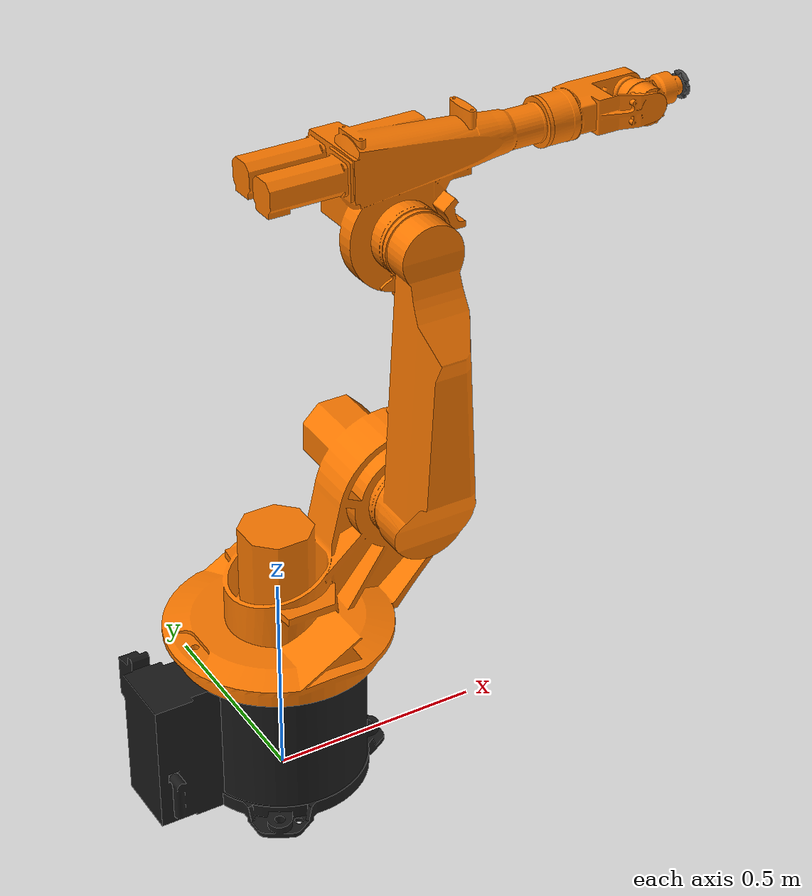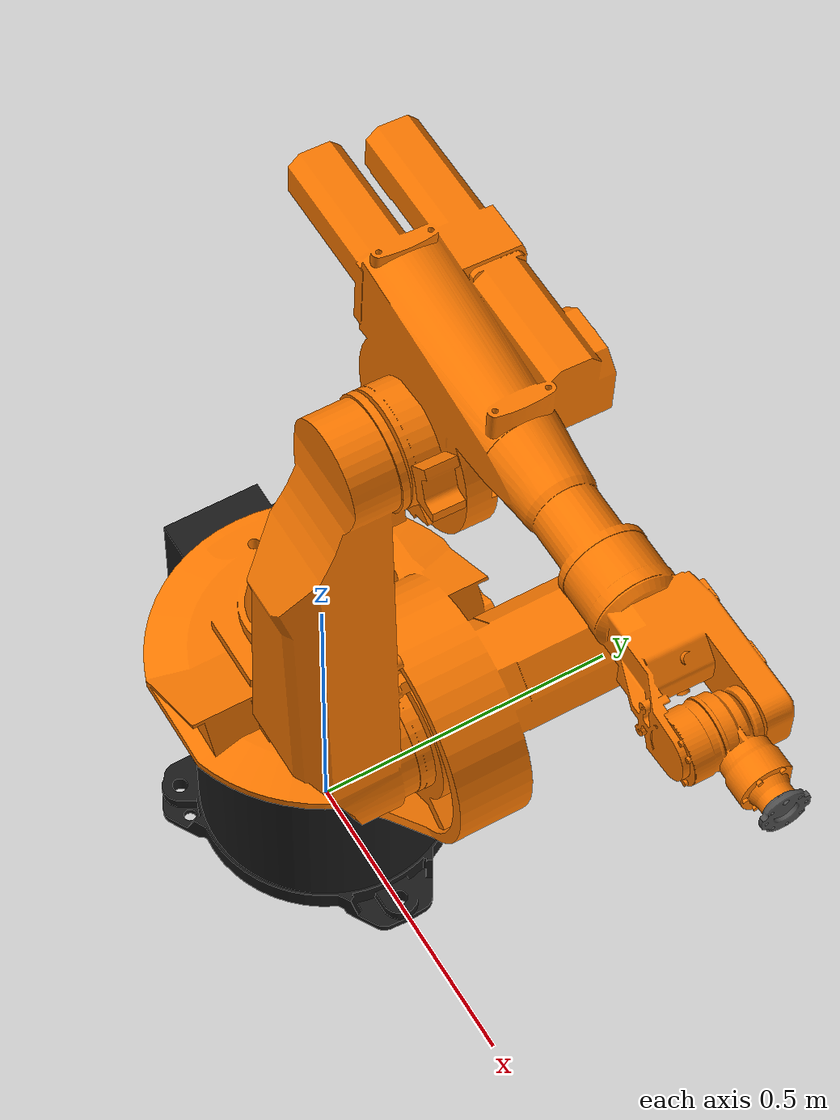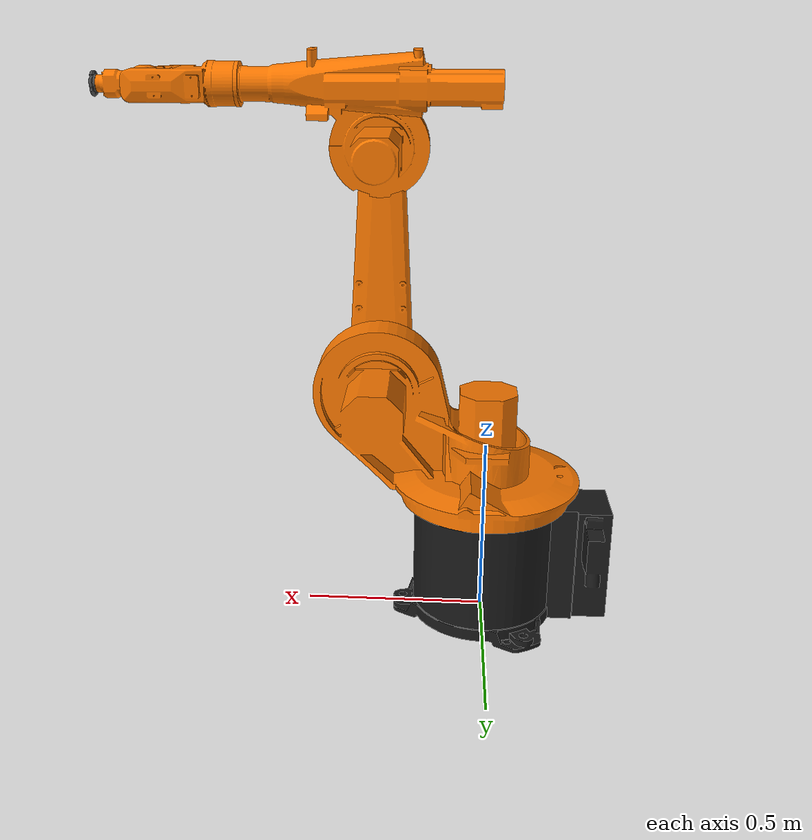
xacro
<?xml version="1.0"?>
<robot
  xmlns:xacro="http://www.ros.org/wiki/xacro"
  name="kuka_kr6">
  <!-- Parameters -->
  <xacro:include filename="$(find kuka_kr6_description)/urdf/common.xacro" />
  <!-- URDF Materials -->
  <xacro:include filename="$(find kuka_kr6_description)/urdf/materials.urdf" />
  <!-- Gazebo macros -->
  <xacro:include filename="$(find kuka_kr6_description)/urdf/gazebo.xacro" />

  <!-- KUKA KR6 -->

  <!-- KUKA Main -->
  <xacro:include filename="$(find kuka_kr6_description)/urdf/kuka_kr6.xacro" />
  <kuka_kr6 prefix="" />

</robot>

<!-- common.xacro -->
<robot
  xmlns:xacro="http://www.ros.org/wiki/xacro"
  name="kuka_common">
  <!-- Constants -->
  <xacro:property name="M_PI" value="3.1415926535897931" />
  <xacro:property name="DEG2RAD" value="0.017453292519943295" />

  <!-- Dynamics -->
  <xacro:property name="damping" value="0.8" />
  <!-- Friccion -->
  <xacro:property name="friccion" value="1.0" />

  <!-- Inertial cuboid element -->
  <!-- Same def that box primitive (center) -->
  <xacro:macro name="cuboid_inertia_def" params="x y z mass">
    <inertia
      iyy="${mass*(z*z+x*x)/12.0}"
      ixx="${mass*(y*y+z*z)/12.0}"
      izz="${mass*(x*x+y*y)/12.0}"
      ixy="0.0" iyz="0.0" ixz="0.0"/>
  </xacro:macro>

  <!-- Same def that box primitive -->
  <xacro:macro name="simple_inertia_def" params="diag">
    <inertia ixx="${diag}"
             iyy="${diag}"
             izz="${diag}"
             ixy="0.0" iyz="0.0" ixz="0.0"/>
  </xacro:macro>

  <!-- Inertial sphere element -->
  <xacro:macro name="sphere_inertia_def" params="radius mass">
    <inertia ixx="${mass*radius*radius*2.0/5.0}"
             iyy="${mass*radius*radius*2.0/5.0}"
             izz="${mass*radius*radius*2.0/5.0}"
             ixy="0.0" iyz="0.0" ixz="0.0"/>
  </xacro:macro>

  <!-- Inertial cylinder element -->
  <!-- Axis along z (length) -->
  <xacro:macro name="cylinder_inertia_def" params="radius length mass">
    <inertia ixx="${mass*(3.0*radius*radius+length*length)/12.0}"
             iyy="${mass*(3.0*radius*radius+length*length)/12.0}"
             izz="${mass*radius*radius/2.0)}"
             ixy="0.0" iyz="0.0" ixz="0.0"/>
  </xacro:macro>

  <!-- Inertial dummy element -->
  <xacro:macro name="dummy_inertial">
    <inertial>
      <mass value="1e-5"/>
      <origin rpy="0 0 0" xyz="0 0 0"/>
      <inertia ixx="1e-6" ixy="0" ixz="0" iyy="1e-6" iyz="0" izz="1e-6"/>
    </inertial>
  </xacro:macro>

</robot>

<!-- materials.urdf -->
<robot>

  <material name="Grey1">
      <color rgba="0.1 0.1 0.1 1" />
  </material>

  <material name="Grey2">
      <color rgba="0.2 0.2 0.2 1" />
  </material>

  <material name="Grey3">
      <color rgba="0.3 0.3 0.3 1" />
  </material>

  <material name="KUKA_Orange">
      <color rgba="0.98 0.47 0 1" />
  </material>

</robot>

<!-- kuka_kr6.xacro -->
<robot
  xmlns:xacro="http://www.ros.org/wiki/xacro"
  name="kuka_kr6">

  <!-- Joint limits -->
  <xacro:property name="a1_upper" value="180" />
  <xacro:property name="a1_lower" value="-180" />

  <xacro:property name="a2_upper" value="-20" />
  <xacro:property name="a2_lower" value="-130" />

  <xacro:property name="a3_upper" value="155" />
  <xacro:property name="a3_lower" value="-115" />

  <xacro:property name="a4_upper" value="345" />
  <xacro:property name="a4_lower" value="-345" />

  <xacro:property name="a5_upper" value="80" />
  <xacro:property name="a5_lower" value="-110" />

  <xacro:property name="a6_upper" value="345" />
  <xacro:property name="a6_lower" value="-345" />

  <!-- Effort -->
  <xacro:property name="a1_effort" value="80" />
  <xacro:property name="a2_effort" value="80" />
  <xacro:property name="a3_effort" value="80" />
  <xacro:property name="a4_effort" value="80" />
  <xacro:property name="a5_effort" value="80" />
  <xacro:property name="a6_effort" value="80" />

  <!-- Joint velocity -->
  <xacro:property name="a1_speed" value="156" />
  <xacro:property name="a2_speed" value="156" />
  <xacro:property name="a3_speed" value="156" />
  <xacro:property name="a4_speed" value="343" />
  <xacro:property name="a5_speed" value="362" />
  <xacro:property name="a6_speed" value="659" />

  <xacro:macro name="kuka_kr6" params="prefix">

    <!-- Base link -->
    <link name="${prefix}base_link">
      <visual>
        <origin
          xyz="0 0 0"
          rpy="0 0 0" />
        <geometry>
          <mesh
            filename="package://kuka_kr6_description/meshes/visual/base_link.stl" />
        </geometry>
        <material name="Grey1" />
      </visual>
      <collision>
        <origin
          xyz="0 0 0"
          rpy="0 0 0" />
        <geometry>
          <mesh
            filename="package://kuka_kr6_description/meshes/collision/base_link.stl" />
        </geometry>
      </collision>
    </link>

    <!-- Joint A1 -->
    <joint
      name="${prefix}joint_a1"
      type="revolute">
      <origin
        xyz="0 0 0.35"
        rpy="0 0 0" />
      <parent
        link="${prefix}base_link" />
      <child
        link="${prefix}link_1" />
      <axis
        xyz="0 0 -1" />
      <limit
        lower="${a1_lower * DEG2RAD}"
        upper="${a1_upper * DEG2RAD}"
        effort="${a1_effort}"
        velocity="${a1_speed * DEG2RAD}" />
    </joint>

    <!-- Link 1 -->
    <link
      name="${prefix}link_1">
      <inertial>
        <origin
          xyz="0 0 0"
          rpy="0 0 0" />
        <mass value="2.0" />
        <simple_inertia_def diag="0.2"/>
      </inertial>
      <visual>
        <origin
          xyz="0 0 0"
          rpy="0 0 0" />
        <geometry>
          <mesh
            filename="package://kuka_kr6_description/meshes/visual/link_1.stl" />
        </geometry>
        <material name="KUKA_Orange" />
      </visual>
      <collision>
        <origin
          xyz="0 0 0"
          rpy="0 0 0" />
        <geometry>
          <mesh
            filename="package://kuka_kr6_description/meshes/collision/link_1.stl" />
        </geometry>
      </collision>
    </link>

    <!-- Joint A2 -->
    <joint
      name="${prefix}joint_a2"
      type="revolute">
      <origin
        xyz="0.3 -0.068 0.315"
        rpy="0 0 0" />
      <parent
        link="${prefix}link_1" />
      <child
        link="${prefix}link_2" />
      <axis
        xyz="0 1 0" />
      <!-- Offset de -90 -->
      <limit
        lower="${(a2_lower + 90.0) * DEG2RAD}"
        upper="${(a2_upper + 90.0) * DEG2RAD}"
        effort="${a2_effort}"
        velocity="${a2_speed * DEG2RAD}" />
    </joint>

    <!-- Link 2-->
    <link
    name="${prefix}link_2">
      <inertial>
        <origin
          xyz="0 0 0"
          rpy="0 0 0" />
        <mass value="2.0" />
        <simple_inertia_def diag="0.2"/>
      </inertial>
      <visual>
        <origin
          xyz="0 0 0"
          rpy="0 0 0" />
        <geometry>
          <mesh
            filename="package://kuka_kr6_description/meshes/visual/link_2.stl" />
        </geometry>
        <material name="KUKA_Orange" />
      </visual>
      <collision>
        <origin
          xyz="0 0 0"
          rpy="0 0 0" />
        <geometry>
          <mesh
            filename="package://kuka_kr6_description/meshes/collision/link_2.stl" />
        </geometry>
      </collision>
    </link>

    <!-- Joint A3 -->
    <joint
      name="${prefix}joint_a3"
      type="revolute">
      <origin
        xyz="0 -0.011 0.65"
        rpy="0 0 0" />
      <parent
        link="${prefix}link_2" />
      <child
        link="${prefix}link_3" />
      <axis
        xyz="0 0.99939 -0.034899" />
      <!-- Offset +90 -->
      <limit
        lower="${(a3_lower - 90) * DEG2RAD}"
        upper="${(a3_upper - 90) * DEG2RAD}"
        effort="${a3_effort}"
        velocity="${a3_speed * DEG2RAD}" />
    </joint>

    <!-- Link 3 -->
    <link
      name="${prefix}link_3">
      <inertial>
        <origin
          xyz="0 0 0"
          rpy="0 0 0" />
        <mass value="2.0" />
        <simple_inertia_def diag="0.2"/>
      </inertial>
      <visual>
        <origin
          xyz="0 0 0"
          rpy="0 0 0" />
        <geometry>
          <mesh
            filename="package://kuka_kr6_description/meshes/visual/link_3.stl" />
        </geometry>
        <material name="KUKA_Orange" />
      </visual>
      <collision>
        <origin
          xyz="0 0 0"
          rpy="0 0 0" />
        <geometry>
          <mesh
            filename="package://kuka_kr6_description/meshes/collision/link_3.stl" />
        </geometry>
      </collision>
    </link>

    <!-- Joint A4 -->
    <joint
      name="${prefix}joint_a4"
      type="revolute">
      <origin
        xyz="0.358 0.08636 0.15208"
        rpy="0 0 0" />
      <parent
        link="${prefix}link_3" />
      <child
        link="${prefix}link_4" />
      <axis
        xyz="-1 0 0" />
      <limit
        lower="${a4_lower * DEG2RAD}"
        upper="${a4_upper * DEG2RAD}"
        effort="${a4_effort}"
        velocity="${a4_speed * DEG2RAD}" />
    </joint>

    <!-- Link 4 -->
    <link
      name="${prefix}link_4">
      <inertial>
        <origin
          xyz="0 0 0"
          rpy="0 0 0" />
        <mass value="2.0" />
        <simple_inertia_def diag="0.2"/>
      </inertial>
      <visual>
        <origin
          xyz="0 0 0"
          rpy="0 0 0" />
        <geometry>
          <mesh
            filename="package://kuka_kr6_description/meshes/visual/link_4.stl" />
        </geometry>
        <material name="KUKA_Orange" />
      </visual>
      <collision>
        <origin
          xyz="0 0 0"
          rpy="0 0 0" />
        <geometry>
          <mesh
            filename="package://kuka_kr6_description/meshes/collision/link_4.stl" />
        </geometry>
      </collision>
    </link>

    <!-- Joint A5 -->
    <joint
      name="${prefix}joint_a5"
      type="revolute">
      <origin
        xyz="0.242 0.020238 -0.00070671"
        rpy="0 0 0" />
      <parent
        link="${prefix}link_4" />
      <child
        link="${prefix}link_5" />
      <axis
        xyz="0 1 0" />
      <limit
        lower="${a5_lower * DEG2RAD}"
        upper="${a5_upper * DEG2RAD}"
        effort="${a5_effort}"
        velocity="${a5_speed * DEG2RAD}" />
    </joint>

    <!-- Link 5 -->
    <link
    name="${prefix}link_5">
      <inertial>
        <origin
          xyz="0 0 0"
          rpy="0 0 0" />
        <mass value="2.0" />
        <simple_inertia_def diag="0.2"/>
      </inertial>
      <visual>
        <origin
          xyz="0 0 0"
          rpy="0 0 0" />
        <geometry>
          <mesh
            filename="package://kuka_kr6_description/meshes/visual/link_5.stl" />
        </geometry>
        <material name="KUKA_Orange" />
      </visual>
      <collision>
        <origin
          xyz="0 0 0"
          rpy="0 0 0" />
        <geometry>
          <mesh
            filename="package://kuka_kr6_description/meshes/collision/link_5.stl" />
        </geometry>
      </collision>
    </link>

    <!-- Joint A6 -->
    <joint
      name="${prefix}joint_a6"
      type="revolute">
      <origin
        xyz="0.1125 -0.02025 0"
        rpy="0 0 0" />
      <parent
        link="${prefix}link_5" />
      <child
        link="${prefix}link_6" />
      <axis
        xyz="-1 0 0" />
      <limit
        lower="${a6_lower * DEG2RAD}"
        upper="${a6_upper * DEG2RAD}"
        effort="${a5_effort}"
        velocity="${a5_speed * DEG2RAD}" />
    </joint>

    <!-- Link 6 -->
    <link
    name="${prefix}link_6">
      <inertial>
        <origin
          xyz="0 0 0"
          rpy="0 0 0" />
        <mass value="2.0" />
        <simple_inertia_def diag="0.2"/>
      </inertial>
      <visual>
        <origin
          xyz="0 0 0"
          rpy="0 0 0" />
        <geometry>
          <mesh
            filename="package://kuka_kr6_description/meshes/visual/link_6.stl" />
        </geometry>
        <material name="Grey3" />

      </visual>
      <collision>
        <origin
          xyz="0 0 0"
          rpy="0 0 0" />
        <geometry>
          <mesh
            filename="package://kuka_kr6_description/meshes/collision/link_6.stl" />
        </geometry>
      </collision>
    </link>

    <!-- Tool joint -->
    <joint
      name="${prefix}joint_tool"
      type="fixed">
      <origin
        xyz="0.1125 -0.02025 0"
        rpy="0 0 0" />
      <parent
        link="${prefix}link_6" />
      <child
        link="${prefix}link_tool" />
      <axis
        xyz="1 0 0" />
    </joint>
    <!-- Tool link -->
    <link name="${prefix}link_tool">
      <inertial>
        <origin
          xyz="0 0 0"
          rpy="0 0 0" />
        <mass value="0.01" />
        <simple_inertia_def diag="0.01"/>
      </inertial>
    </link>

  </xacro:macro>

</robot>
